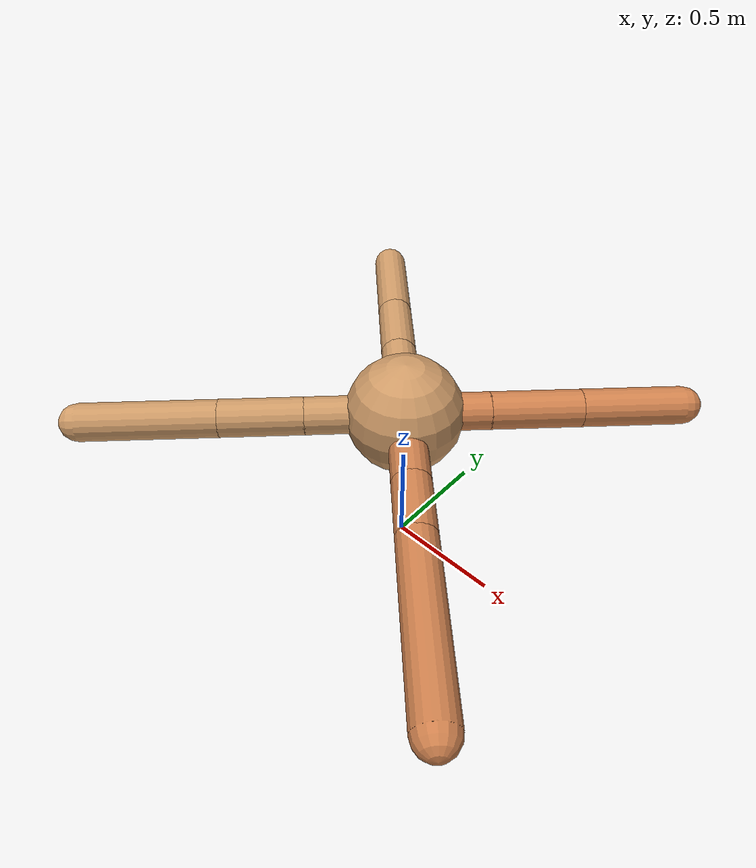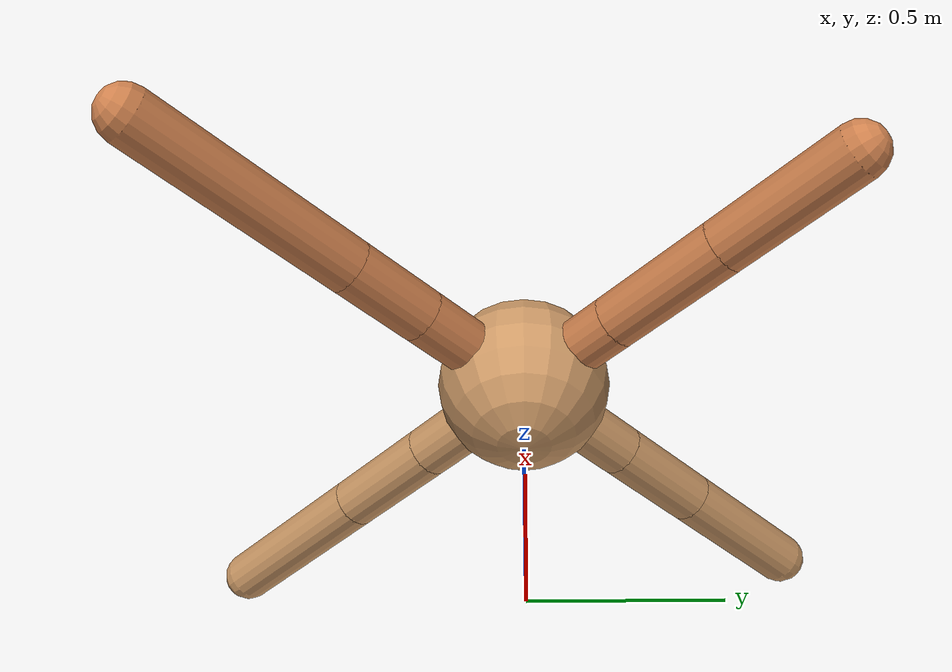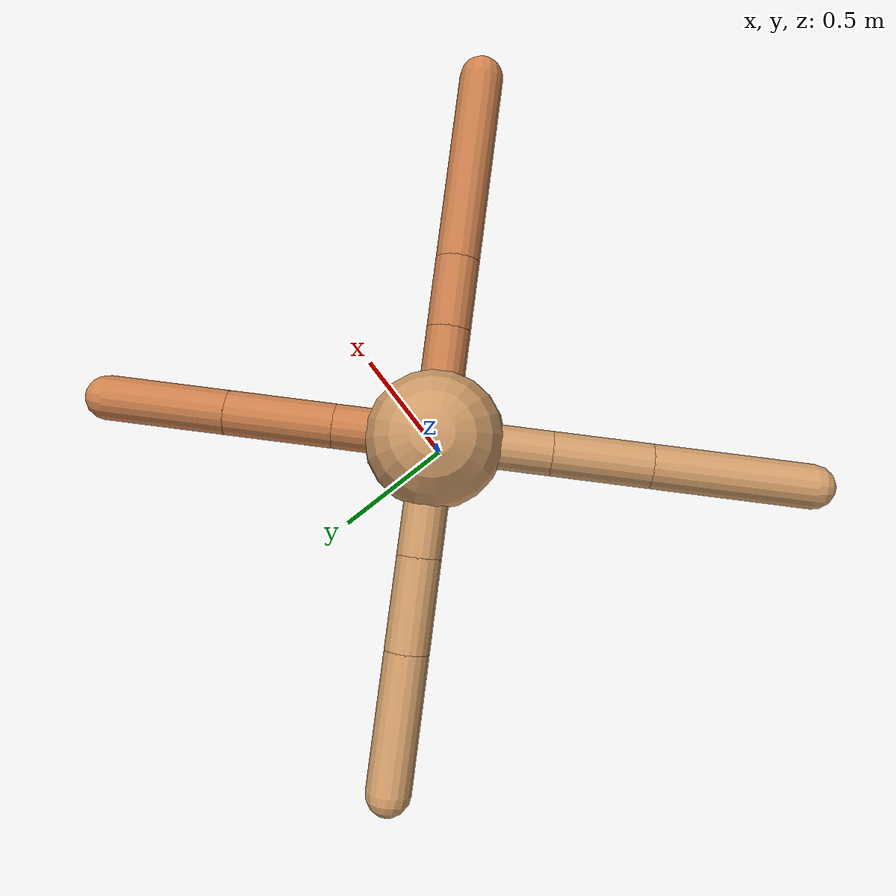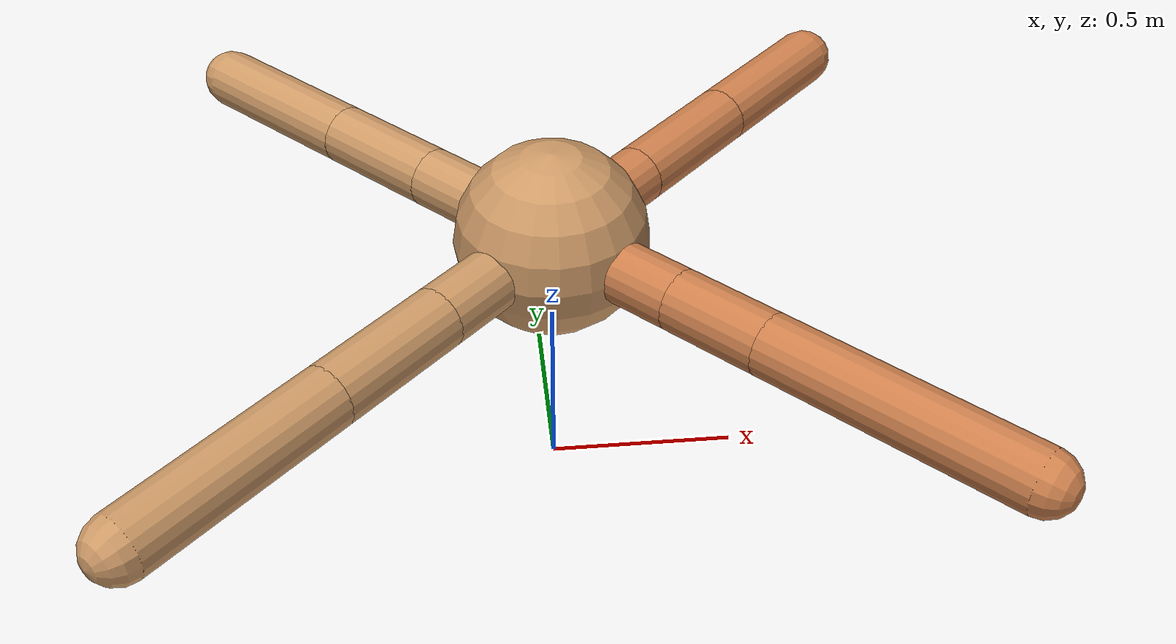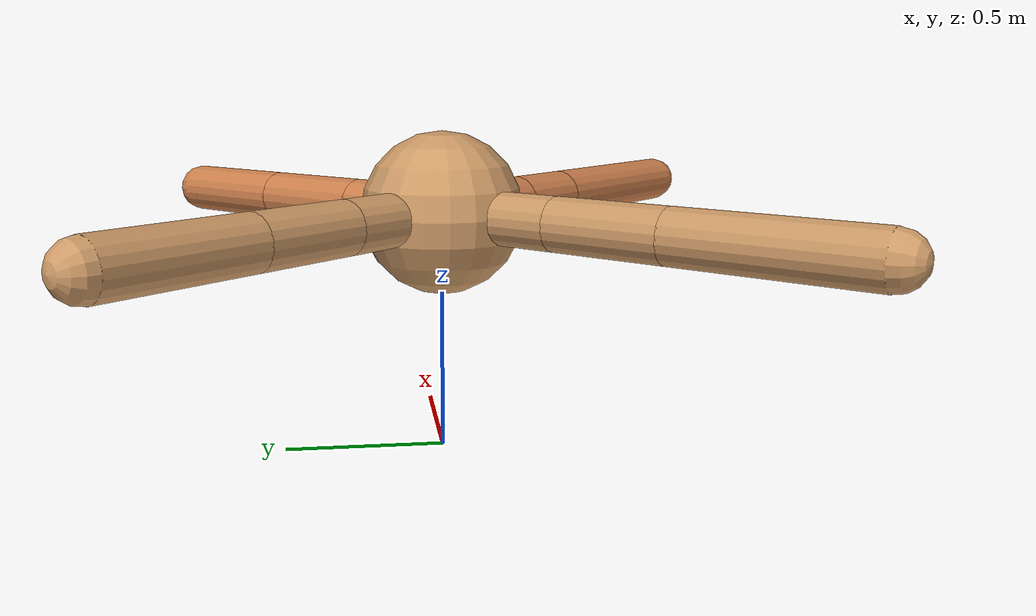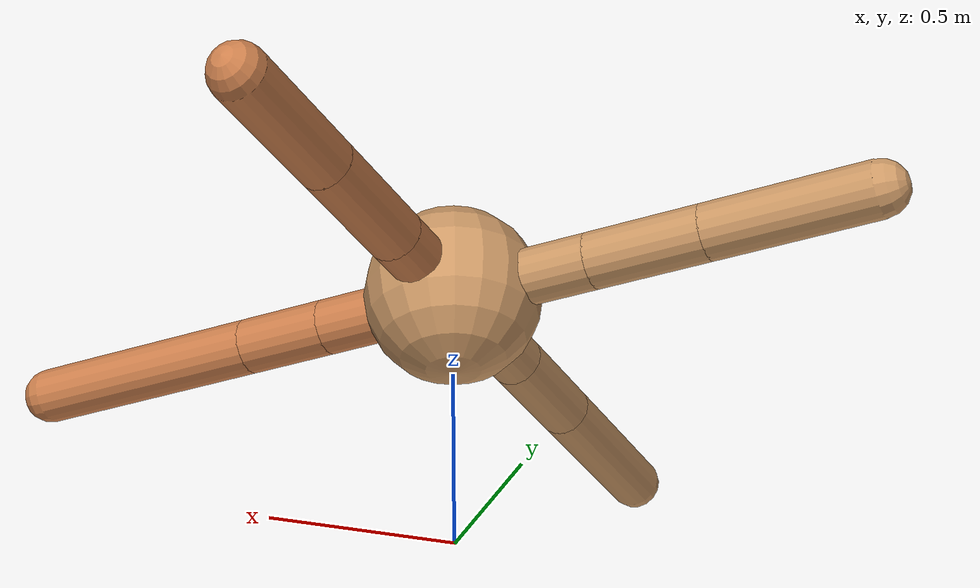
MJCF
<mujoco model="ant">
  <compiler angle="degree" coordinate="local" inertiafromgeom="true" />
  <option integrator="RK4" timestep="0.01" />
  <custom>
    <numeric data="0.0 0.0 0.55 1.0 0.0 0.0 0.0 0.0 1.0 0.0 -1.0 0.0 -1.0 0.0 1.0" name="init_qpos" />
  </custom>
  <default>
    <joint armature="1" damping="1" limited="true" />
    <geom conaffinity="0" condim="3" density="5.0" friction="1.5 0.1 0.1" margin="0.01" rgba="0.8 0.6 0.4 1" />
  </default>
  <worldbody>
    <body name="torso" pos="0 0 0.75">
      <geom name="torso_geom" pos="0 0 0" size="0.25" type="sphere" />

      <body name="front_left_leg" pos="0 0 0">
        <geom fromto="0.0 0.0 0.0 0.25242490734082657 0.25242490734082657 0.0" name="aux_1_geom" size="0.08" type="capsule" rgba=".8 .5 .3 1" />
        <body name="aux_1" pos="0.25242490734082657 0.25242490734082657 0.0">
          <joint axis="0 0 1" name="hip_1" pos="0.0 0.0 0.0" range="-40 40" type="hinge" />
          <geom fromto="0.0 0.0 0.0 0.27010814987934467 0.27010814987934467 0.0" name="left_leg_geom" size="0.08" type="capsule" rgba=".8 .5 .3 1" />
          <body pos="0.27010814987934467 0.27010814987934467 0.0" name="front_left_foot">
            <joint axis="-1 1 0" name="ankle_1" pos="0.0 0.0 0.0" range="30 100" type="hinge" />
            <geom fromto="0.0 0.0 0.0 0.30233488294849115 0.30233488294849115 0.0" name="left_ankle_geom" size="0.08" type="capsule" rgba=".8 .5 .3 1" />
          </body>
        </body>
      </body>
      <body name="front_right_leg" pos="0 0 0">
        <geom fromto="0.0 0.0 0.0 -0.2948413673220137 0.2948413673220137 0.0" name="aux_2_geom" size="0.08" type="capsule" />
        <body name="aux_2" pos="-0.2948413673220137 0.2948413673220137 0.0">
          <joint axis="0 0 1" name="hip_2" pos="0.0 0.0 0.0" range="-40 40" type="hinge" />
          <geom fromto="0.0 0.0 0.0 -0.23237863433194825 0.23237863433194825 0.0" name="right_leg_geom" size="0.08" type="capsule" />
          <body pos="-0.23237863433194825 0.23237863433194825 0.0" name="front_right_foot">
            <joint axis="1 1 0" name="ankle_2" pos="0.0 0.0 0.0" range="-100 -30" type="hinge" />
            <geom fromto="0.0 0.0 0.0 -0.3359617373760689 0.3359617373760689 0.0" name="right_ankle_geom" size="0.08" type="capsule" />
          </body>
        </body>
      </body>
      <body name="left_back_leg" pos="0 0 0">
        <geom fromto="0.0 0.0 0.0 -0.2935522516297702 -0.2935522516297702 0.0" name="aux_3_geom" size="0.08" type="capsule" />
        <body name="aux_3" pos="-0.2935522516297702 -0.2935522516297702 0.0">
          <joint axis="0 0 1" name="hip_3" pos="0.0 0.0 0.0" range="-40 40" type="hinge" />
          <geom fromto="0.0 0.0 0.0 -0.2491119958355671 -0.2491119958355671 0.0" name="back_leg_geom" size="0.08" type="capsule" />
          <body pos="-0.2491119958355671 -0.2491119958355671 0.0" name="left_back_foot">
            <joint axis="-1 1 0" name="ankle_3" pos="0.0 0.0 0.0" range="-100 -30" type="hinge" />
            <geom fromto="0.0 0.0 0.0 -0.40495868283923314 -0.40495868283923314 0.0" name="third_ankle_geom" size="0.08" type="capsule" />
          </body>
        </body>
      </body>
      <body name="right_back_leg" pos="0 0 0">
        <geom fromto="0.0 0.0 0.0 0.2803283012734008 -0.2803283012734008 0.0" name="aux_4_geom" size="0.08" type="capsule" rgba=".8 .5 .3 1" />
        <body name="aux_4" pos="0.2803283012734008 -0.2803283012734008 0.0">
          <joint axis="0 0 1" name="hip_4" pos="0.0 0.0 0.0" range="-40 40" type="hinge" />
          <geom fromto="0.0 0.0 0.0 0.18113747851607787 -0.18113747851607787 0.0" name="rightback_leg_geom" size="0.08" type="capsule" rgba=".8 .5 .3 1" />
          <body pos="0.18113747851607787 -0.18113747851607787 0.0" name="right_back_foot">
            <joint axis="1 1 0" name="ankle_4" pos="0.0 0.0 0.0" range="30 100" type="hinge" />
            <geom fromto="0.0 0.0 0.0 0.48816714369582836 -0.48816714369582836 0.0" name="fourth_ankle_geom" size="0.08" type="capsule" rgba=".8 .5 .3 1" />
          </body>
        </body>
      </body>
    </body>
  </worldbody>
  <actuator>
    <motor ctrllimited="true" ctrlrange="-1.0 1.0" joint="hip_4" gear="150" />
    <motor ctrllimited="true" ctrlrange="-1.0 1.0" joint="ankle_4" gear="150" />
    <motor ctrllimited="true" ctrlrange="-1.0 1.0" joint="hip_1" gear="150" />
    <motor ctrllimited="true" ctrlrange="-1.0 1.0" joint="ankle_1" gear="150" />
    <motor ctrllimited="true" ctrlrange="-1.0 1.0" joint="hip_2" gear="150" />
    <motor ctrllimited="true" ctrlrange="-1.0 1.0" joint="ankle_2" gear="150" />
    <motor ctrllimited="true" ctrlrange="-1.0 1.0" joint="hip_3" gear="150" />
    <motor ctrllimited="true" ctrlrange="-1.0 1.0" joint="ankle_3" gear="150" />
  </actuator>
</mujoco>
